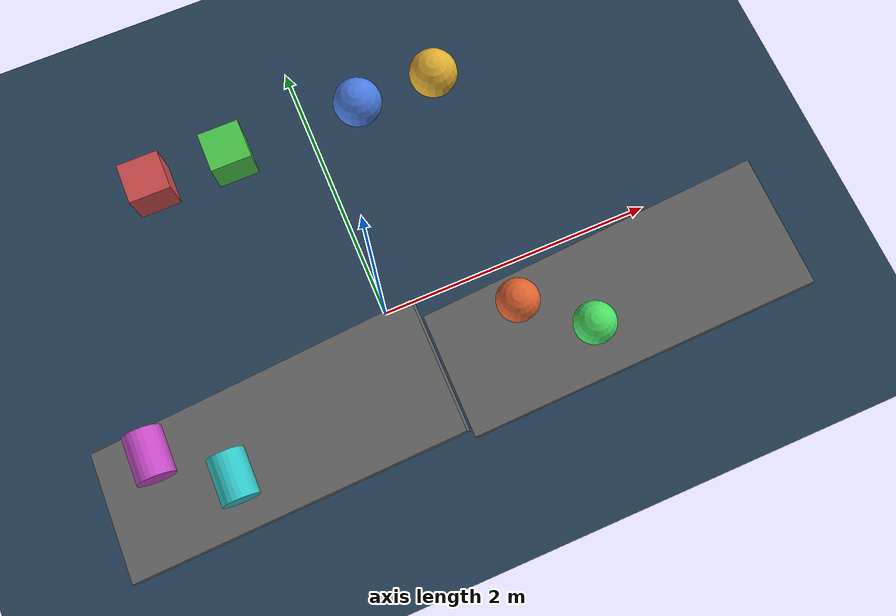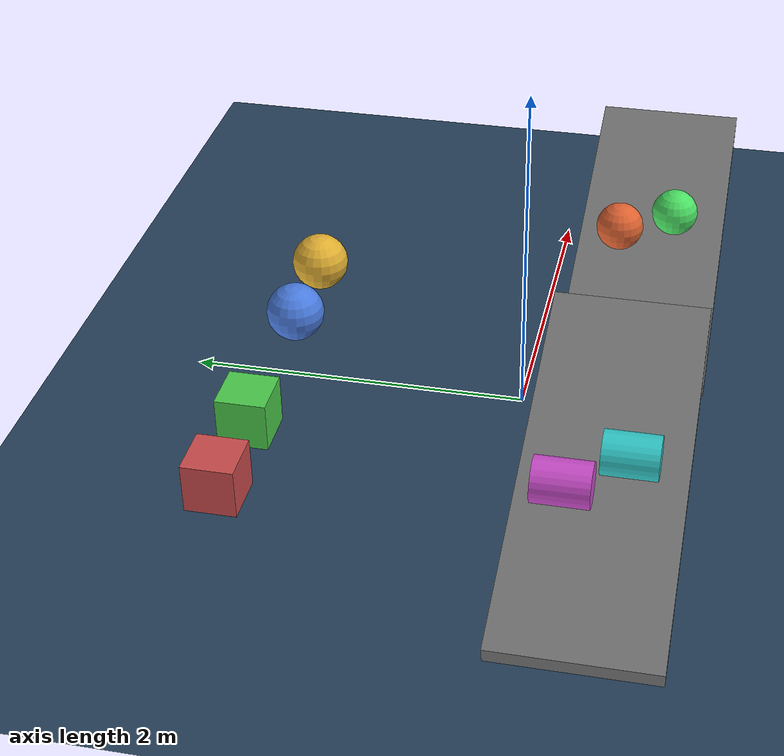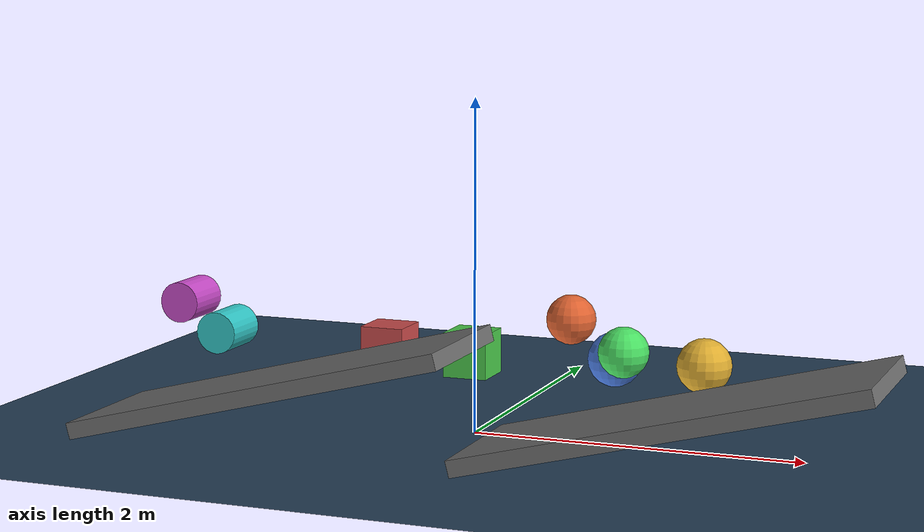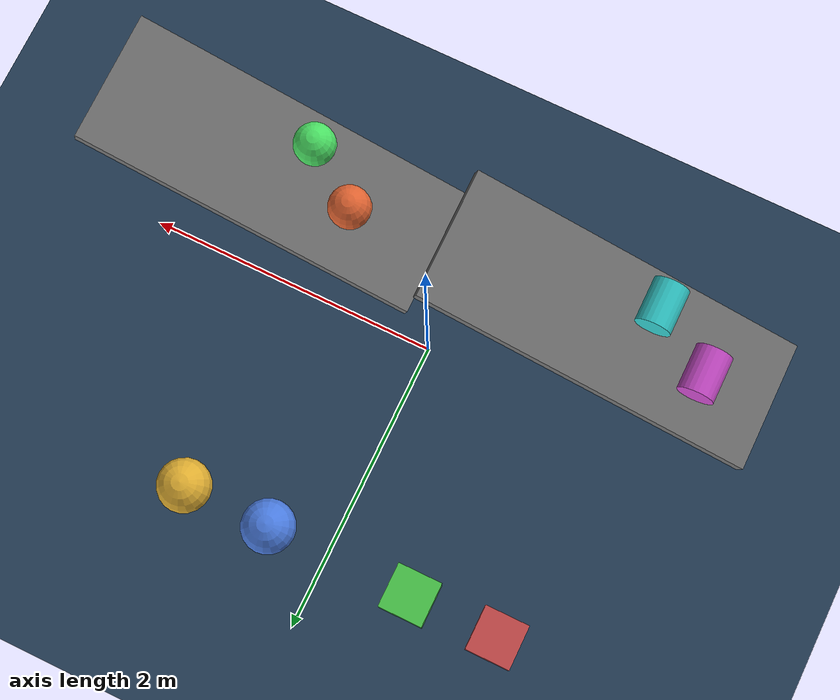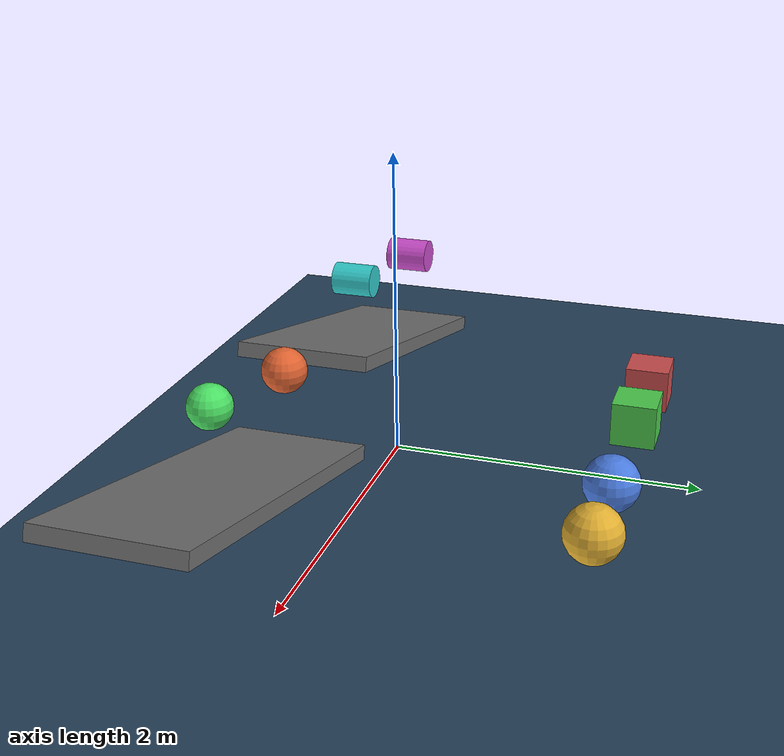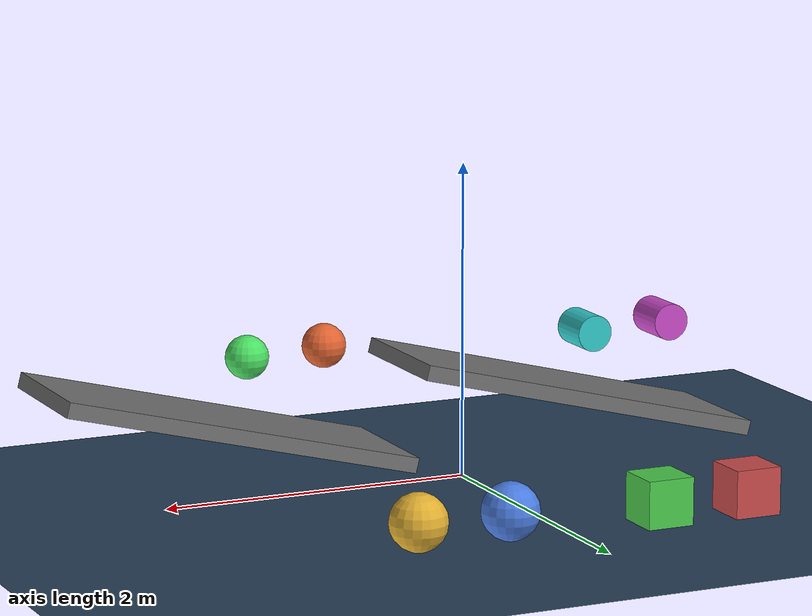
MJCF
<mujoco model="friction_comparison">

    <compiler angle="radian" autolimits="true"/>

    <option
        timestep="0.002"
        gravity="0 0 -9.81"
        integrator="implicitfast"
        cone="elliptic"
        impratio="1"/>

    <visual>
        <global realtime="1"/>
        <quality shadowsize="2048"/>
        <headlight ambient="0.3 0.3 0.3"
                   diffuse="0.7 0.7 0.7"
                   specular="0.2 0.2 0.2"/>
    </visual>

    <asset>
        <texture
            name="floor_texture"
            type="2d"
            builtin="checker"
            rgb1="0.2 0.3 0.4"
            rgb2="0.1 0.2 0.3"
            width="512"
            height="512"/>

        <material
            name="floor_material"
            texture="floor_texture"
            texrepeat="5 5"
            reflectance="0.1"/>
    </asset>

    <worldbody>

        <!-- Floor                                                 -->
        <!-- Lower priority so moving objects define contact setup -->

        <geom
            name="floor"
            type="plane"
            size="6 6 0.1"
            material="floor_material"
            friction="1 0.005 0.0001"
            condim="3"
            priority="-1"/>

        <light
            directional="true"
            pos="0 0 6"
            dir="0 0 -1"
            diffuse="0.8 0.8 0.8"
            specular="0.2 0.2 0.2"/>

        <!-- Experiment 1                                         -->
        <!-- Box: condim = 1 vs condim = 3                        -->

        <body name="box_condim1" pos="-1.2 1.5 0.15">
            <freejoint/>

            <geom
                name="box_geom_condim1"
                type="box"
                size="0.15 0.15 0.15"
                mass="1"
                rgba="0.8 0.3 0.3 1"
                friction="1 0.005 0.0001"
                condim="1"
                priority="0"/>
        </body>

        <body name="box_condim3" pos="-0.6 1.5 0.15">
            <freejoint/>

            <geom
                name="box_geom_condim3"
                type="box"
                size="0.15 0.15 0.15"
                mass="1"
                rgba="0.3 0.8 0.3 1"
                friction="1 0.005 0.0001"
                condim="3"
                priority="0"/>
        </body>

        <!-- Experiment 2                                         -->
        <!-- Sphere: condim = 3 vs condim = 6                     -->

        <body name="sphere_condim3" pos="0.4 1.5 0.18">
            <freejoint/>

            <geom
                name="sphere_geom_condim3"
                type="sphere"
                size="0.18"
                mass="1"
                rgba="0.3 0.5 0.9 1"
                friction="1 0.01 0.01"
                condim="3"
                priority="0"/>
        </body>

        <body name="sphere_condim6" pos="1.0 1.5 0.18">
            <freejoint/>

            <geom
                name="sphere_geom_condim6"
                type="sphere"
                size="0.18"
                mass="1"
                rgba="0.9 0.7 0.2 1"
                friction="1 0.01 0.05"
                condim="6"
                priority="0"/>
        </body>

        <!-- Slope A                                              -->
        <!-- Used for cylinder condim comparison                  -->

        <body name="slope_cylinder" pos="-1.0 -0.6 0.35"
              euler="0 -0.25 0">

            <geom
                name="slope_cylinder_geom"
                type="box"
                size="1.2 0.45 0.05"
                rgba="0.45 0.45 0.45 1"
                friction="1 0.005 0.0001"
                condim="3"
                priority="-1"/>
        </body>

        <!-- Cylinder with normal contact only -->

        <body name="cylinder_condim1"
              pos="-1.65 -0.45 0.78"
              euler="1.5708 0 0">
            <freejoint/>

            <geom
                name="cylinder_geom_condim1"
                type="cylinder"
                size="0.12 0.15"
                mass="1"
                rgba="0.8 0.3 0.8 1"
                friction="1 0.005 0.0001"
                condim="1"
                priority="0"/>
        </body>

        <!-- Cylinder with sliding friction -->

        <body name="cylinder_condim3"
              pos="-1.25 -0.75 0.68"
              euler="1.5708 0 0">
            <freejoint/>

            <geom
                name="cylinder_geom_condim3"
                type="cylinder"
                size="0.12 0.15"
                mass="1"
                rgba="0.2 0.8 0.8 1"
                friction="1 0.005 0.0001"
                condim="3"
                priority="0"/>
        </body>

        <!-- Slope B                                              -->
        <!-- Used for sphere rolling-friction comparison          -->

        <body name="slope_sphere" pos="1.4 -0.6 0.35"
              euler="0 -0.25 0">

            <geom
                name="slope_sphere_geom"
                type="box"
                size="1.2 0.45 0.05"
                rgba="0.45 0.45 0.45 1"
                friction="1 0.01 0.001"
                condim="6"
                priority="-1"/>
        </body>

        <!-- Sphere with torsional friction but no rolling friction mode -->

        <body name="sphere_slope_condim4"
              pos="0.75 -0.45 0.82">
            <freejoint/>

            <geom
                name="sphere_slope_geom_condim4"
                type="sphere"
                size="0.14"
                mass="1"
                rgba="0.9 0.4 0.2 1"
                friction="1 0.01 0.05"
                condim="4"
                priority="0"/>
        </body>

        <!-- Sphere with rolling friction enabled -->

        <body name="sphere_slope_condim6"
              pos="1.15 -0.75 0.72">
            <freejoint/>

            <geom
                name="sphere_slope_geom_condim6"
                type="sphere"
                size="0.14"
                mass="1"
                rgba="0.3 0.9 0.4 1"
                friction="1 0.01 0.05"
                condim="6"
                priority="0"/>
        </body>

    </worldbody>

</mujoco>
